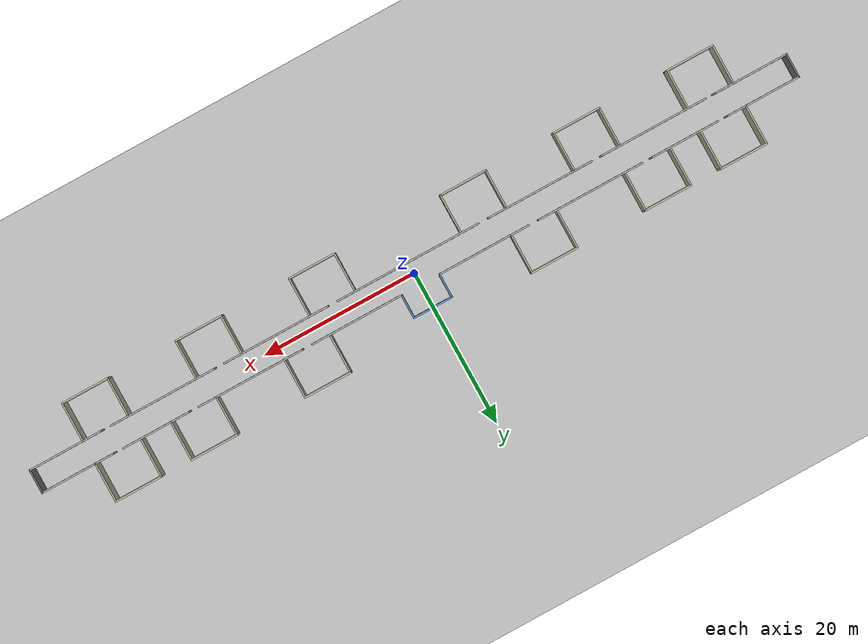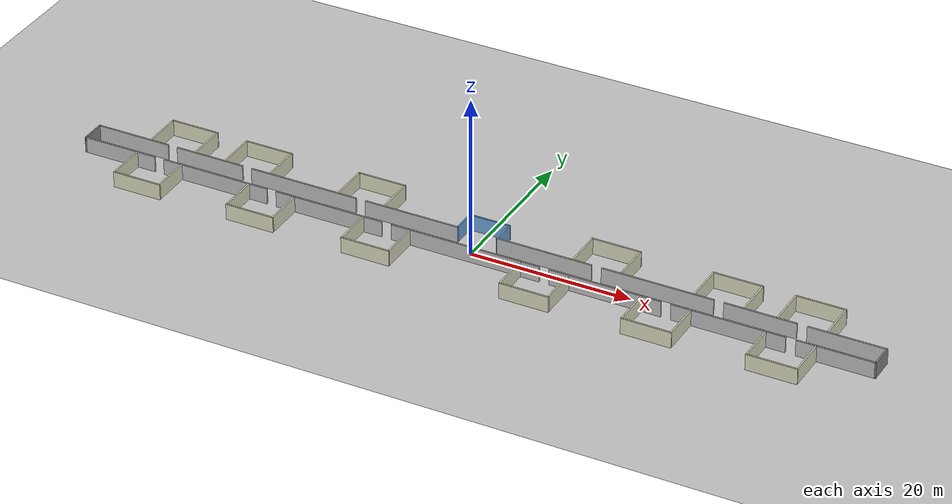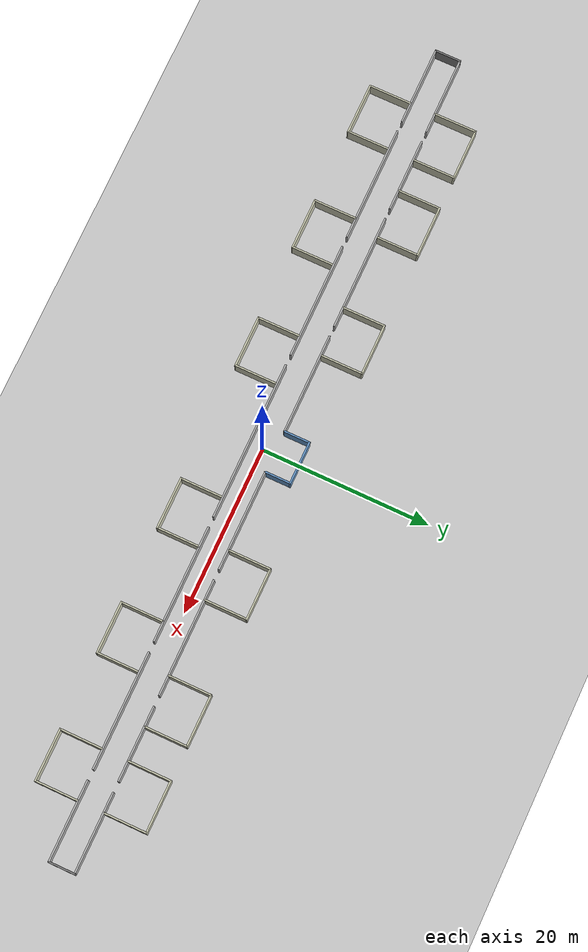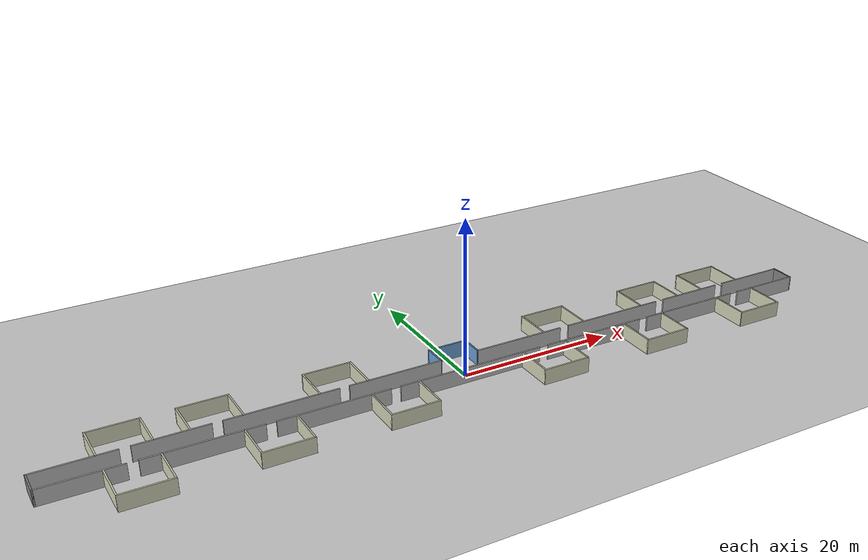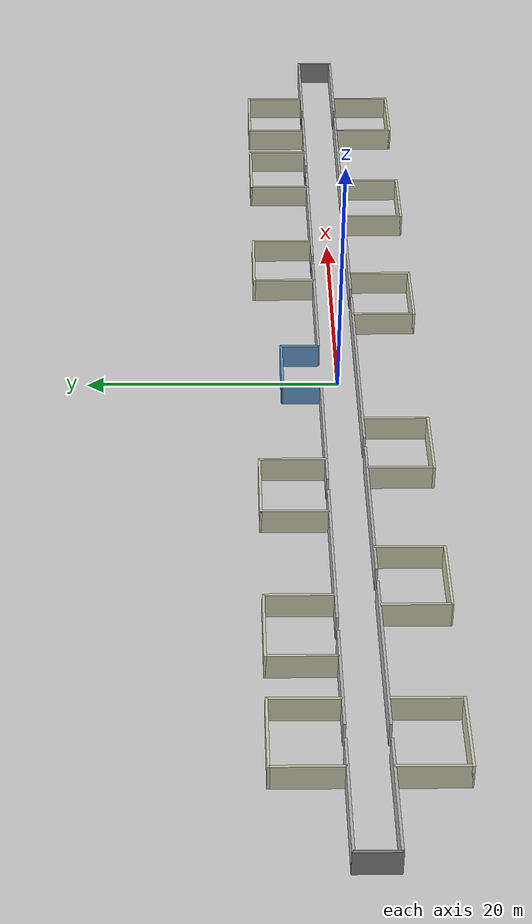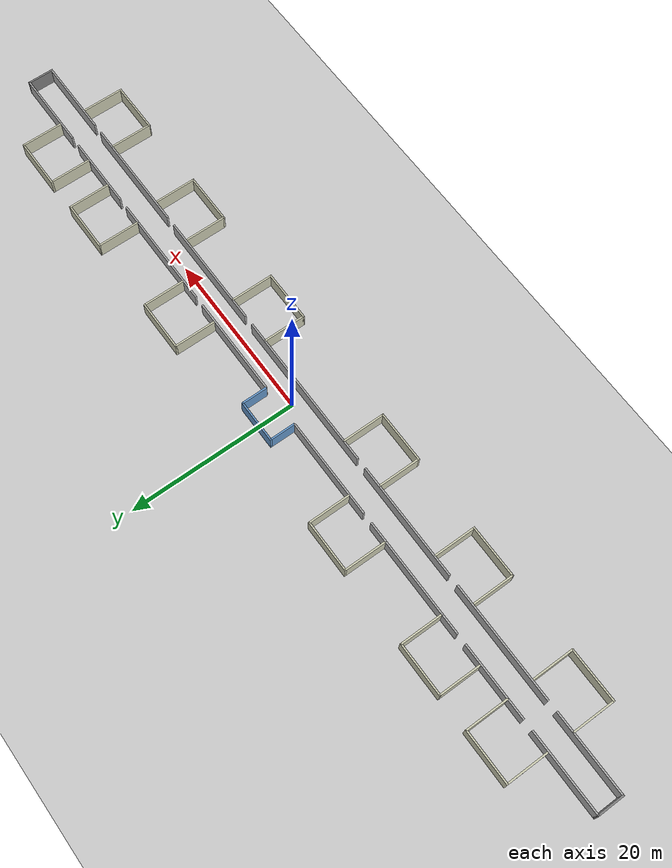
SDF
<?xml version="1.0" ?>
<sdf version="1.9">
  <world name="university_floor">
    <!-- PERFORMANCE PHYSICS SETUP -->
    <physics name="4ms" type="ignored">
      <max_step_size>0.004</max_step_size>
      <real_time_factor>1</real_time_factor>
      <real_time_update_rate>250</real_time_update_rate>
    </physics>

    <!-- CRASH-FREE PLUGINS -->
    <plugin name="gz::sim::systems::Physics" filename="ignition-gazebo-physics-system"/>
    <plugin name="gz::sim::systems::UserCommands" filename="ignition-gazebo-user-commands-system"/>
    <plugin name="gz::sim::systems::SceneBroadcaster" filename="ignition-gazebo-scene-broadcaster-system"/>
    <plugin name="gz::sim::systems::Contact" filename="ignition-gazebo-contact-system"/>

    <gravity>0 0 -9.8</gravity>
    <scene>
      <ambient>0.6 0.6 0.6 1</ambient>
      <background>0.7 0.7 0.7 1</background>
      <shadows>false</shadows>
    </scene>

    <!-- GROUND PLANE -->
    <model name="ground_plane">
      <static>true</static>
      <link name="link">
        <collision name="col"><geometry><plane><normal>0 0 1</normal><size>120 40</size></plane></geometry></collision>
        <visual name="vis">
          <geometry><plane><normal>0 0 1</normal><size>120 40</size></plane></geometry>
          <material>
            <ambient>0.8 0.8 0.8 1</ambient>
            <diffuse>0.8 0.8 0.8 1</diffuse>
            <specular>0.2 0.2 0.2 1</specular>
          </material>
        </visual>
      </link>
    </model>

    <!-- LIGHTING -->
    <light name="sun" type="directional">
      <pose>0 0 10 0 0 0</pose>
      <intensity>1</intensity>
      <direction>-0.5 0.1 -0.9</direction>
      <diffuse>0.8 0.8 0.8 1</diffuse>
      <specular>0.2 0.2 0.2 1</specular>
    </light>

    <!-- CORRIDOR END WALLS -->
    <model name="wall_end_west">
      <static>true</static>
      <pose>-50.0 0.0 1.0 0 0 0</pose>
      <link name="link">
        <collision name="col"><geometry><box><size>0.2 3.2 2.0</size></box></geometry></collision>
        <visual name="vis">
          <geometry><box><size>0.2 3.2 2.0</size></box></geometry>
          <material><ambient>0.5 0.5 0.5 1</ambient><diffuse>0.5 0.5 0.5 1</diffuse></material>
        </visual>
      </link>
    </model>

    <model name="wall_end_east">
      <static>true</static>
      <pose>50.0 0.0 1.0 0 0 0</pose>
      <link name="link">
        <collision name="col"><geometry><box><size>0.2 3.2 2.0</size></box></geometry></collision>
        <visual name="vis">
          <geometry><box><size>0.2 3.2 2.0</size></box></geometry>
          <material><ambient>0.5 0.5 0.5 1</ambient><diffuse>0.5 0.5 0.5 1</diffuse></material>
        </visual>
      </link>
    </model>

    <!-- CENTRAL LOBBY (LEFT SIDE, X = -2.5m to +2.5m, Y = 1.5m to 4.5m) -->
    <model name="lobby_back_wall">
      <static>true</static>
      <pose>0.0 4.5 1.0 0 0 0</pose>
      <link name="link">
        <collision name="col"><geometry><box><size>5.2 0.2 2.0</size></box></geometry></collision>
        <visual name="vis">
          <geometry><box><size>5.2 0.2 2.0</size></box></geometry>
          <material><ambient>0.4 0.6 0.8 1</ambient><diffuse>0.4 0.6 0.8 1</diffuse></material>
        </visual>
      </link>
    </model>
    <model name="lobby_left_wall">
      <static>true</static>
      <pose>-2.5 3.0 1.0 0 0 0</pose>
      <link name="link">
        <collision name="col"><geometry><box><size>0.2 3.0 2.0</size></box></geometry></collision>
        <visual name="vis">
          <geometry><box><size>0.2 3.0 2.0</size></box></geometry>
          <material><ambient>0.4 0.6 0.8 1</ambient><diffuse>0.4 0.6 0.8 1</diffuse></material>
        </visual>
      </link>
    </model>
    <model name="lobby_right_wall">
      <static>true</static>
      <pose>2.5 3.0 1.0 0 0 0</pose>
      <link name="link">
        <collision name="col"><geometry><box><size>0.2 3.0 2.0</size></box></geometry></collision>
        <visual name="vis">
          <geometry><box><size>0.2 3.0 2.0</size></box></geometry>
          <material><ambient>0.4 0.6 0.8 1</ambient><diffuse>0.4 0.6 0.8 1</diffuse></material>
        </visual>
      </link>
    </model>

    <!-- RIGHT CORRIDOR WALL SEGMENTS (Y = -1.5m) -->
    <model name="wall_r1"><static>true</static><pose>-45.3 -1.5 1.0 0 0 0</pose><link name="l"><collision name="c"><geometry><box><size>9.4 0.2 2.0</size></box></geometry></collision><visual name="v"><geometry><box><size>9.4 0.2 2.0</size></box></geometry><material><ambient>0.7 0.7 0.7 1</ambient><diffuse>0.7 0.7 0.7 1</diffuse></material></visual></link></model>
    <model name="wall_r2"><static>true</static><pose>-32.5 -1.5 1.0 0 0 0</pose><link name="l"><collision name="c"><geometry><box><size>13.8 0.2 2.0</size></box></geometry></collision><visual name="v"><geometry><box><size>13.8 0.2 2.0</size></box></geometry><material><ambient>0.7 0.7 0.7 1</ambient><diffuse>0.7 0.7 0.7 1</diffuse></material></visual></link></model>
    <model name="wall_r3"><static>true</static><pose>-17.5 -1.5 1.0 0 0 0</pose><link name="l"><collision name="c"><geometry><box><size>13.8 0.2 2.0</size></box></geometry></collision><visual name="v"><geometry><box><size>13.8 0.2 2.0</size></box></geometry><material><ambient>0.7 0.7 0.7 1</ambient><diffuse>0.7 0.7 0.7 1</diffuse></material></visual></link></model>
    <model name="wall_r4"><static>true</static><pose>0.0 -1.5 1.0 0 0 0</pose><link name="l"><collision name="c"><geometry><box><size>18.8 0.2 2.0</size></box></geometry></collision><visual name="v"><geometry><box><size>18.8 0.2 2.0</size></box></geometry><material><ambient>0.7 0.7 0.7 1</ambient><diffuse>0.7 0.7 0.7 1</diffuse></material></visual></link></model>
    <model name="wall_r5"><static>true</static><pose>17.5 -1.5 1.0 0 0 0</pose><link name="l"><collision name="c"><geometry><box><size>13.8 0.2 2.0</size></box></geometry></collision><visual name="v"><geometry><box><size>13.8 0.2 2.0</size></box></geometry><material><ambient>0.7 0.7 0.7 1</ambient><diffuse>0.7 0.7 0.7 1</diffuse></material></visual></link></model>
    <model name="wall_r6"><static>true</static><pose>32.5 -1.5 1.0 0 0 0</pose><link name="l"><collision name="c"><geometry><box><size>13.8 0.2 2.0</size></box></geometry></collision><visual name="v"><geometry><box><size>13.8 0.2 2.0</size></box></geometry><material><ambient>0.7 0.7 0.7 1</ambient><diffuse>0.7 0.7 0.7 1</diffuse></material></visual></link></model>
    <model name="wall_r7"><static>true</static><pose>45.3 -1.5 1.0 0 0 0</pose><link name="l"><collision name="c"><geometry><box><size>9.4 0.2 2.0</size></box></geometry></collision><visual name="v"><geometry><box><size>9.4 0.2 2.0</size></box></geometry><material><ambient>0.7 0.7 0.7 1</ambient><diffuse>0.7 0.7 0.7 1</diffuse></material></visual></link></model>

    <!-- LEFT CORRIDOR WALL SEGMENTS (Y = 1.5m) -->
    <model name="wall_l1"><static>true</static><pose>-45.3 1.5 1.0 0 0 0</pose><link name="l"><collision name="c"><geometry><box><size>9.4 0.2 2.0</size></box></geometry></collision><visual name="v"><geometry><box><size>9.4 0.2 2.0</size></box></geometry><material><ambient>0.7 0.7 0.7 1</ambient><diffuse>0.7 0.7 0.7 1</diffuse></material></visual></link></model>
    <model name="wall_l2"><static>true</static><pose>-35.0 1.5 1.0 0 0 0</pose><link name="l"><collision name="c"><geometry><box><size>8.8 0.2 2.0</size></box></geometry></collision><visual name="v"><geometry><box><size>8.8 0.2 2.0</size></box></geometry><material><ambient>0.7 0.7 0.7 1</ambient><diffuse>0.7 0.7 0.7 1</diffuse></material></visual></link></model>
    <model name="wall_l3"><static>true</static><pose>-22.5 1.5 1.0 0 0 0</pose><link name="l"><collision name="c"><geometry><box><size>13.8 0.2 2.0</size></box></geometry></collision><visual name="v"><geometry><box><size>13.8 0.2 2.0</size></box></geometry><material><ambient>0.7 0.7 0.7 1</ambient><diffuse>0.7 0.7 0.7 1</diffuse></material></visual></link></model>
    <model name="wall_l4"><static>true</static><pose>-8.45 1.5 1.0 0 0 0</pose><link name="l"><collision name="c"><geometry><box><size>11.9 0.2 2.0</size></box></geometry></collision><visual name="v"><geometry><box><size>11.9 0.2 2.0</size></box></geometry><material><ambient>0.7 0.7 0.7 1</ambient><diffuse>0.7 0.7 0.7 1</diffuse></material></visual></link></model>
    <model name="wall_l5"><static>true</static><pose>8.45 1.5 1.0 0 0 0</pose><link name="l"><collision name="c"><geometry><box><size>11.9 0.2 2.0</size></box></geometry></collision><visual name="v"><geometry><box><size>11.9 0.2 2.0</size></box></geometry><material><ambient>0.7 0.7 0.7 1</ambient><diffuse>0.7 0.7 0.7 1</diffuse></material></visual></link></model>
    <model name="wall_l6"><static>true</static><pose>22.5 1.5 1.0 0 0 0</pose><link name="l"><collision name="c"><geometry><box><size>13.8 0.2 2.0</size></box></geometry></collision><visual name="v"><geometry><box><size>13.8 0.2 2.0</size></box></geometry><material><ambient>0.7 0.7 0.7 1</ambient><diffuse>0.7 0.7 0.7 1</diffuse></material></visual></link></model>
    <model name="wall_l7"><static>true</static><pose>35.0 1.5 1.0 0 0 0</pose><link name="l"><collision name="c"><geometry><box><size>8.8 0.2 2.0</size></box></geometry></collision><visual name="v"><geometry><box><size>8.8 0.2 2.0</size></box></geometry><material><ambient>0.7 0.7 0.7 1</ambient><diffuse>0.7 0.7 0.7 1</diffuse></material></visual></link></model>
    <model name="wall_l8"><static>true</static><pose>45.3 1.5 1.0 0 0 0</pose><link name="l"><collision name="c"><geometry><box><size>9.4 0.2 2.0</size></box></geometry></collision><visual name="v"><geometry><box><size>9.4 0.2 2.0</size></box></geometry><material><ambient>0.7 0.7 0.7 1</ambient><diffuse>0.7 0.7 0.7 1</diffuse></material></visual></link></model>

    <!-- 6 CLASSROOMS ON LEFT SIDE (+Y SIDE) -->
    <!-- Room L1 (Door at X=-40) -->
    <model name="room_l1_back"><static>true</static><pose>-40.0 6.5 1.0 0 0 0</pose><link name="l"><collision name="c"><geometry><box><size>6.2 0.2 2.0</size></box></geometry></collision><visual name="v"><geometry><box><size>6.2 0.2 2.0</size></box></geometry><material><ambient>0.8 0.8 0.7 1</ambient><diffuse>0.8 0.8 0.7 1</diffuse></material></visual></link></model>
    <model name="room_l1_left"><static>true</static><pose>-43.0 4.0 1.0 0 0 0</pose><link name="l"><collision name="c"><geometry><box><size>0.2 5.0 2.0</size></box></geometry></collision><visual name="v"><geometry><box><size>0.2 5.0 2.0</size></box></geometry><material><ambient>0.8 0.8 0.7 1</ambient><diffuse>0.8 0.8 0.7 1</diffuse></material></visual></link></model>
    <model name="room_l1_right"><static>true</static><pose>-37.0 4.0 1.0 0 0 0</pose><link name="l"><collision name="c"><geometry><box><size>0.2 5.0 2.0</size></box></geometry></collision><visual name="v"><geometry><box><size>0.2 5.0 2.0</size></box></geometry><material><ambient>0.8 0.8 0.7 1</ambient><diffuse>0.8 0.8 0.7 1</diffuse></material></visual></link></model>

    <!-- Room L2 (Door at X=-30) -->
    <model name="room_l2_back"><static>true</static><pose>-30.0 6.5 1.0 0 0 0</pose><link name="l"><collision name="c"><geometry><box><size>6.2 0.2 2.0</size></box></geometry></collision><visual name="v"><geometry><box><size>6.2 0.2 2.0</size></box></geometry><material><ambient>0.8 0.8 0.7 1</ambient><diffuse>0.8 0.8 0.7 1</diffuse></material></visual></link></model>
    <model name="room_l2_left"><static>true</static><pose>-33.0 4.0 1.0 0 0 0</pose><link name="l"><collision name="c"><geometry><box><size>0.2 5.0 2.0</size></box></geometry></collision><visual name="v"><geometry><box><size>0.2 5.0 2.0</size></box></geometry><material><ambient>0.8 0.8 0.7 1</ambient><diffuse>0.8 0.8 0.7 1</diffuse></material></visual></link></model>
    <model name="room_l2_right"><static>true</static><pose>-27.0 4.0 1.0 0 0 0</pose><link name="l"><collision name="c"><geometry><box><size>0.2 5.0 2.0</size></box></geometry></collision><visual name="v"><geometry><box><size>0.2 5.0 2.0</size></box></geometry><material><ambient>0.8 0.8 0.7 1</ambient><diffuse>0.8 0.8 0.7 1</diffuse></material></visual></link></model>

    <!-- Room L3 (Door at X=-15) -->
    <model name="room_l3_back"><static>true</static><pose>-15.0 6.5 1.0 0 0 0</pose><link name="l"><collision name="c"><geometry><box><size>6.2 0.2 2.0</size></box></geometry></collision><visual name="v"><geometry><box><size>6.2 0.2 2.0</size></box></geometry><material><ambient>0.8 0.8 0.7 1</ambient><diffuse>0.8 0.8 0.7 1</diffuse></material></visual></link></model>
    <model name="room_l3_left"><static>true</static><pose>-18.0 4.0 1.0 0 0 0</pose><link name="l"><collision name="c"><geometry><box><size>0.2 5.0 2.0</size></box></geometry></collision><visual name="v"><geometry><box><size>0.2 5.0 2.0</size></box></geometry><material><ambient>0.8 0.8 0.7 1</ambient><diffuse>0.8 0.8 0.7 1</diffuse></material></visual></link></model>
    <model name="room_l3_right"><static>true</static><pose>-12.0 4.0 1.0 0 0 0</pose><link name="l"><collision name="c"><geometry><box><size>0.2 5.0 2.0</size></box></geometry></collision><visual name="v"><geometry><box><size>0.2 5.0 2.0</size></box></geometry><material><ambient>0.8 0.8 0.7 1</ambient><diffuse>0.8 0.8 0.7 1</diffuse></material></visual></link></model>

    <!-- Room L4 (Door at X=15) -->
    <model name="room_l4_back"><static>true</static><pose>15.0 6.5 1.0 0 0 0</pose><link name="l"><collision name="c"><geometry><box><size>6.2 0.2 2.0</size></box></geometry></collision><visual name="v"><geometry><box><size>6.2 0.2 2.0</size></box></geometry><material><ambient>0.8 0.8 0.7 1</ambient><diffuse>0.8 0.8 0.7 1</diffuse></material></visual></link></model>
    <model name="room_l4_left"><static>true</static><pose>12.0 4.0 1.0 0 0 0</pose><link name="l"><collision name="c"><geometry><box><size>0.2 5.0 2.0</size></box></geometry></collision><visual name="v"><geometry><box><size>0.2 5.0 2.0</size></box></geometry><material><ambient>0.8 0.8 0.7 1</ambient><diffuse>0.8 0.8 0.7 1</diffuse></material></visual></link></model>
    <model name="room_l4_right"><static>true</static><pose>18.0 4.0 1.0 0 0 0</pose><link name="l"><collision name="c"><geometry><box><size>0.2 5.0 2.0</size></box></geometry></collision><visual name="v"><geometry><box><size>0.2 5.0 2.0</size></box></geometry><material><ambient>0.8 0.8 0.7 1</ambient><diffuse>0.8 0.8 0.7 1</diffuse></material></visual></link></model>

    <!-- Room L5 (Door at X=30) -->
    <model name="room_l5_back"><static>true</static><pose>30.0 6.5 1.0 0 0 0</pose><link name="l"><collision name="c"><geometry><box><size>6.2 0.2 2.0</size></box></geometry></collision><visual name="v"><geometry><box><size>6.2 0.2 2.0</size></box></geometry><material><ambient>0.8 0.8 0.7 1</ambient><diffuse>0.8 0.8 0.7 1</diffuse></material></visual></link></model>
    <model name="room_l5_left"><static>true</static><pose>27.0 4.0 1.0 0 0 0</pose><link name="l"><collision name="c"><geometry><box><size>0.2 5.0 2.0</size></box></geometry></collision><visual name="v"><geometry><box><size>0.2 5.0 2.0</size></box></geometry><material><ambient>0.8 0.8 0.7 1</ambient><diffuse>0.8 0.8 0.7 1</diffuse></material></visual></link></model>
    <model name="room_l5_right"><static>true</static><pose>33.0 4.0 1.0 0 0 0</pose><link name="l"><collision name="c"><geometry><box><size>0.2 5.0 2.0</size></box></geometry></collision><visual name="v"><geometry><box><size>0.2 5.0 2.0</size></box></geometry><material><ambient>0.8 0.8 0.7 1</ambient><diffuse>0.8 0.8 0.7 1</diffuse></material></visual></link></model>

    <!-- Room L6 (Door at X=40) -->
    <model name="room_l6_back"><static>true</static><pose>40.0 6.5 1.0 0 0 0</pose><link name="l"><collision name="c"><geometry><box><size>6.2 0.2 2.0</size></box></geometry></collision><visual name="v"><geometry><box><size>6.2 0.2 2.0</size></box></geometry><material><ambient>0.8 0.8 0.7 1</ambient><diffuse>0.8 0.8 0.7 1</diffuse></material></visual></link></model>
    <model name="room_l6_left"><static>true</static><pose>37.0 4.0 1.0 0 0 0</pose><link name="l"><collision name="c"><geometry><box><size>0.2 5.0 2.0</size></box></geometry></collision><visual name="v"><geometry><box><size>0.2 5.0 2.0</size></box></geometry><material><ambient>0.8 0.8 0.7 1</ambient><diffuse>0.8 0.8 0.7 1</diffuse></material></visual></link></model>
    <model name="room_l6_right"><static>true</static><pose>43.0 4.0 1.0 0 0 0</pose><link name="l"><collision name="c"><geometry><box><size>0.2 5.0 2.0</size></box></geometry></collision><visual name="v"><geometry><box><size>0.2 5.0 2.0</size></box></geometry><material><ambient>0.8 0.8 0.7 1</ambient><diffuse>0.8 0.8 0.7 1</diffuse></material></visual></link></model>

    <!-- 6 CLASSROOMS ON RIGHT SIDE (-Y SIDE) -->
    <!-- Room R1 (Door at X=-40) -->
    <model name="room_r1_back"><static>true</static><pose>-40.0 -6.5 1.0 0 0 0</pose><link name="l"><collision name="c"><geometry><box><size>6.2 0.2 2.0</size></box></geometry></collision><visual name="v"><geometry><box><size>6.2 0.2 2.0</size></box></geometry><material><ambient>0.8 0.8 0.7 1</ambient><diffuse>0.8 0.8 0.7 1</diffuse></material></visual></link></model>
    <model name="room_r1_left"><static>true</static><pose>-43.0 -4.0 1.0 0 0 0</pose><link name="l"><collision name="c"><geometry><box><size>0.2 5.0 2.0</size></box></geometry></collision><visual name="v"><geometry><box><size>0.2 5.0 2.0</size></box></geometry><material><ambient>0.8 0.8 0.7 1</ambient><diffuse>0.8 0.8 0.7 1</diffuse></material></visual></link></model>
    <model name="room_r1_right"><static>true</static><pose>-37.0 -4.0 1.0 0 0 0</pose><link name="l"><collision name="c"><geometry><box><size>0.2 5.0 2.0</size></box></geometry></collision><visual name="v"><geometry><box><size>0.2 5.0 2.0</size></box></geometry><material><ambient>0.8 0.8 0.7 1</ambient><diffuse>0.8 0.8 0.7 1</diffuse></material></visual></link></model>

    <!-- Room R2 (Door at X=-25) -->
    <model name="room_r2_back"><static>true</static><pose>-25.0 -6.5 1.0 0 0 0</pose><link name="l"><collision name="c"><geometry><box><size>6.2 0.2 2.0</size></box></geometry></collision><visual name="v"><geometry><box><size>6.2 0.2 2.0</size></box></geometry><material><ambient>0.8 0.8 0.7 1</ambient><diffuse>0.8 0.8 0.7 1</diffuse></material></visual></link></model>
    <model name="room_r2_left"><static>true</static><pose>-28.0 -4.0 1.0 0 0 0</pose><link name="l"><collision name="c"><geometry><box><size>0.2 5.0 2.0</size></box></geometry></collision><visual name="v"><geometry><box><size>0.2 5.0 2.0</size></box></geometry><material><ambient>0.8 0.8 0.7 1</ambient><diffuse>0.8 0.8 0.7 1</diffuse></material></visual></link></model>
    <model name="room_r2_right"><static>true</static><pose>-22.0 -4.0 1.0 0 0 0</pose><link name="l"><collision name="c"><geometry><box><size>0.2 5.0 2.0</size></box></geometry></collision><visual name="v"><geometry><box><size>0.2 5.0 2.0</size></box></geometry><material><ambient>0.8 0.8 0.7 1</ambient><diffuse>0.8 0.8 0.7 1</diffuse></material></visual></link></model>

    <!-- Room R3 (Door at X=-10) -->
    <model name="room_r3_back"><static>true</static><pose>-10.0 -6.5 1.0 0 0 0</pose><link name="l"><collision name="c"><geometry><box><size>6.2 0.2 2.0</size></box></geometry></collision><visual name="v"><geometry><box><size>6.2 0.2 2.0</size></box></geometry><material><ambient>0.8 0.8 0.7 1</ambient><diffuse>0.8 0.8 0.7 1</diffuse></material></visual></link></model>
    <model name="room_r3_left"><static>true</static><pose>-13.0 -4.0 1.0 0 0 0</pose><link name="l"><collision name="c"><geometry><box><size>0.2 5.0 2.0</size></box></geometry></collision><visual name="v"><geometry><box><size>0.2 5.0 2.0</size></box></geometry><material><ambient>0.8 0.8 0.7 1</ambient><diffuse>0.8 0.8 0.7 1</diffuse></material></visual></link></model>
    <model name="room_r3_right"><static>true</static><pose>-7.0 -4.0 1.0 0 0 0</pose><link name="l"><collision name="c"><geometry><box><size>0.2 5.0 2.0</size></box></geometry></collision><visual name="v"><geometry><box><size>0.2 5.0 2.0</size></box></geometry><material><ambient>0.8 0.8 0.7 1</ambient><diffuse>0.8 0.8 0.7 1</diffuse></material></visual></link></model>

    <!-- Room R4 (Door at X=10) -->
    <model name="room_r4_back"><static>true</static><pose>10.0 -6.5 1.0 0 0 0</pose><link name="l"><collision name="c"><geometry><box><size>6.2 0.2 2.0</size></box></geometry></collision><visual name="v"><geometry><box><size>6.2 0.2 2.0</size></box></geometry><material><ambient>0.8 0.8 0.7 1</ambient><diffuse>0.8 0.8 0.7 1</diffuse></material></visual></link></model>
    <model name="room_r4_left"><static>true</static><pose>7.0 -4.0 1.0 0 0 0</pose><link name="l"><collision name="c"><geometry><box><size>0.2 5.0 2.0</size></box></geometry></collision><visual name="v"><geometry><box><size>0.2 5.0 2.0</size></box></geometry><material><ambient>0.8 0.8 0.7 1</ambient><diffuse>0.8 0.8 0.7 1</diffuse></material></visual></link></model>
    <model name="room_r4_right"><static>true</static><pose>13.0 -4.0 1.0 0 0 0</pose><link name="l"><collision name="c"><geometry><box><size>0.2 5.0 2.0</size></box></geometry></collision><visual name="v"><geometry><box><size>0.2 5.0 2.0</size></box></geometry><material><ambient>0.8 0.8 0.7 1</ambient><diffuse>0.8 0.8 0.7 1</diffuse></material></visual></link></model>

    <!-- Room R5 (Door at X=25) -->
    <model name="room_r5_back"><static>true</static><pose>25.0 -6.5 1.0 0 0 0</pose><link name="l"><collision name="c"><geometry><box><size>6.2 0.2 2.0</size></box></geometry></collision><visual name="v"><geometry><box><size>6.2 0.2 2.0</size></box></geometry><material><ambient>0.8 0.8 0.7 1</ambient><diffuse>0.8 0.8 0.7 1</diffuse></material></visual></link></model>
    <model name="room_r5_left"><static>true</static><pose>22.0 -4.0 1.0 0 0 0</pose><link name="l"><collision name="c"><geometry><box><size>0.2 5.0 2.0</size></box></geometry></collision><visual name="v"><geometry><box><size>0.2 5.0 2.0</size></box></geometry><material><ambient>0.8 0.8 0.7 1</ambient><diffuse>0.8 0.8 0.7 1</diffuse></material></visual></link></model>
    <model name="room_r5_right"><static>true</static><pose>28.0 -4.0 1.0 0 0 0</pose><link name="l"><collision name="c"><geometry><box><size>0.2 5.0 2.0</size></box></geometry></collision><visual name="v"><geometry><box><size>0.2 5.0 2.0</size></box></geometry><material><ambient>0.8 0.8 0.7 1</ambient><diffuse>0.8 0.8 0.7 1</diffuse></material></visual></link></model>

    <!-- Room R6 (Door at X=40) -->
    <model name="room_r6_back"><static>true</static><pose>40.0 -6.5 1.0 0 0 0</pose><link name="l"><collision name="c"><geometry><box><size>6.2 0.2 2.0</size></box></geometry></collision><visual name="v"><geometry><box><size>6.2 0.2 2.0</size></box></geometry><material><ambient>0.8 0.8 0.7 1</ambient><diffuse>0.8 0.8 0.7 1</diffuse></material></visual></link></model>
    <model name="room_r6_left"><static>true</static><pose>37.0 -4.0 1.0 0 0 0</pose><link name="l"><collision name="c"><geometry><box><size>0.2 5.0 2.0</size></box></geometry></collision><visual name="v"><geometry><box><size>0.2 5.0 2.0</size></box></geometry><material><ambient>0.8 0.8 0.7 1</ambient><diffuse>0.8 0.8 0.7 1</diffuse></material></visual></link></model>
    <model name="room_r6_right"><static>true</static><pose>43.0 -4.0 1.0 0 0 0</pose><link name="l"><collision name="c"><geometry><box><size>0.2 5.0 2.0</size></box></geometry></collision><visual name="v"><geometry><box><size>0.2 5.0 2.0</size></box></geometry><material><ambient>0.8 0.8 0.7 1</ambient><diffuse>0.8 0.8 0.7 1</diffuse></material></visual></link></model>

  </world>
</sdf>
